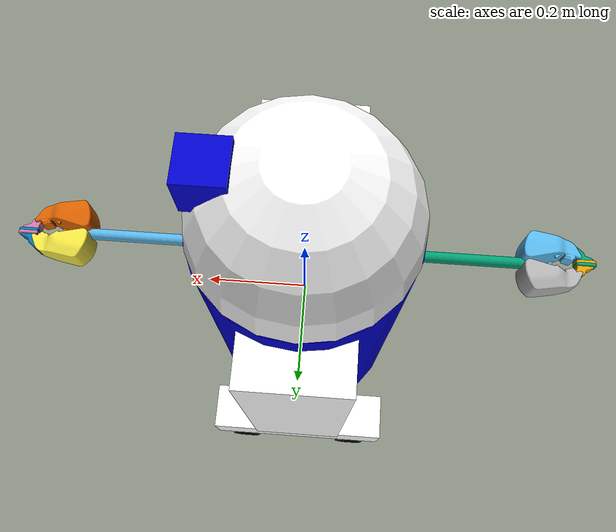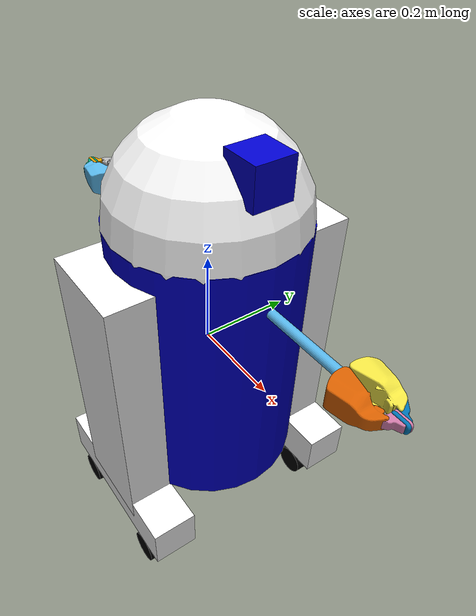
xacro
<?xml version="1.0"?>
<robot name="r2d2" xmlns:xacro="http://ros.org/wiki/xacro">

  <xacro:property name="width" value="0.2" />
  <xacro:property name="leglen" value="0.6" />
  <xacro:property name="polelen" value="0.2" />
  <xacro:property name="bodylen" value="0.6" />
  <xacro:property name="baselen" value="0.4" />
  <xacro:property name="wheeldiam" value="0.07" />
  <xacro:property name="pi" value="3.1415" />

  <material name="blue">
    <color rgba="0 0 0.8 1"/>
  </material>

  <material name="black">
    <color rgba="0 0 0 1"/>
  </material>

  <material name="white">
    <color rgba="1 1 1 1"/>
  </material>

  <xacro:macro name="default_inertial" params="mass">
    <inertial>
      <mass value="${mass}" />
      <inertia ixx="1.0" ixy="0.0" ixz="0.0" iyy="1.0" iyz="0.0" izz="1.0" />
    </inertial>
  </xacro:macro>

  <link name="base_link">
    <visual>
      <geometry>
        <cylinder radius="${width}" length="${bodylen}"/>
      </geometry>
      <material name="blue"/>
    </visual>
    <collision>
      <geometry>
        <cylinder radius="${width}" length="${bodylen}"/>
      </geometry>
    </collision>
    <xacro:default_inertial mass="10"/>
  </link>

  <xacro:macro name="wheel" params="prefix suffix reflect">

    <link name="${prefix}_${suffix}_wheel">
      <visual>
        <origin xyz="0 0 0" rpy="${pi/2} 0 0" />
        <geometry>
          <cylinder radius="${wheeldiam/2}" length="0.1"/>
        </geometry>
        <material name="black"/>
      </visual>
      <collision>
        <origin xyz="0 0 0" rpy="${pi/2} 0 0" />
        <geometry>
          <cylinder radius="${wheeldiam/2}" length="0.1"/>
        </geometry>
      </collision>
      <xacro:default_inertial mass="1"/>
    </link>
    <joint name="${prefix}_${suffix}_wheel_joint" type="continuous">
      <axis xyz="0 1 0" rpy="0 0 0" />
      <parent link="${prefix}_base"/>
      <child link="${prefix}_${suffix}_wheel"/>
      <origin xyz="${baselen*reflect/3} 0 -${wheeldiam/2+.05}" rpy="0 0 0"/>
    </joint>
    <!-- This block provides the simulator (Gazebo) with information on a few additional
    physical properties. See http://gazebosim.org/tutorials/?tut=ros_urdf for more-->
    <gazebo reference="${prefix}_${suffix}_wheel">
      <mu1 value="200.0"/>
      <mu2 value="100.0"/>
      <kp value="10000000.0" />
      <kd value="1.0" />
      <material>Gazebo/Grey</material>
    </gazebo>

    <!-- This block connects the wheel joint to an actuator (motor), which informs both
    simulation and visualization of the robot -->
    <transmission name="${prefix}_${suffix}_wheel_trans">
      <type>transmission_interface/SimpleTransmission</type>
      <actuator name="${prefix}_${suffix}_wheel_motor">
        <mechanicalReduction>1</mechanicalReduction>
      </actuator>
      <joint name="${prefix}_${suffix}_wheel_joint">
        <hardwareInterface>VelocityJointInterface</hardwareInterface>
      </joint>
    </transmission>
  </xacro:macro>

  <xacro:macro name="leg" params="prefix reflect">
    <link name="${prefix}_leg">
      <visual>
        <geometry>
          <box size="${leglen} 0.1 0.2"/>
        </geometry>
        <origin xyz="0 0 -${leglen/2}" rpy="0 ${pi/2} 0"/>
        <material name="white"/>
      </visual>
      <collision>
        <geometry>
          <box size="${leglen} 0.1 0.2"/>
        </geometry>
        <origin xyz="0 0 -${leglen/2}" rpy="0 ${pi/2} 0"/>
      </collision>
      <xacro:default_inertial mass="10"/>
    </link>

    <joint name="base_to_${prefix}_leg" type="fixed">
      <parent link="base_link"/>
      <child link="${prefix}_leg"/>
      <origin xyz="0 ${reflect*(width+.02)} 0.25" />
    </joint>

    <link name="${prefix}_base">
      <visual>
        <geometry>
          <box size="${baselen} 0.1 0.1"/>
        </geometry>
        <material name="white"/>
      </visual>
      <collision>
        <geometry>
          <box size="${baselen} 0.1 0.1"/>
        </geometry>
      </collision>
      <xacro:default_inertial mass="10"/>
    </link>

    <joint name="${prefix}_base_joint" type="fixed">
      <parent link="${prefix}_leg"/>
      <child link="${prefix}_base"/>
      <origin xyz="0 0 ${-leglen}" />
    </joint>
    <xacro:wheel prefix="${prefix}" suffix="front" reflect="1"/>
    <xacro:wheel prefix="${prefix}" suffix="back" reflect="-1"/>
  </xacro:macro>
  <xacro:leg prefix="right" reflect="-1" />
  <xacro:leg prefix="left" reflect="1" />

  <joint name="gripper_extension_front" type="prismatic">
    <parent link="base_link"/>
    <child link="gripper_pole_front"/>
    <limit effort="1000.0" lower="-${width*2-.02}" upper="0" velocity="0.5"/>
    <origin rpy="0 0 0" xyz="${width-.01} 0 0.2"/>
    <limit effort="30" velocity="0.2"/>
    <dynamics damping="0.0" friction="0.0"/>
  </joint>

  <link name="gripper_pole_front">
    <visual>
      <geometry>
        <cylinder length="${polelen}" radius="0.01"/>
      </geometry>
      <origin xyz="${polelen/2} 0 0" rpy="0 ${pi/2} 0 "/>
    </visual>
    <collision>
      <geometry>
        <cylinder length="${polelen}" radius="0.01"/>
      </geometry>
      <origin xyz="${polelen/2} 0 0" rpy="0 ${pi/2} 0 "/>
    </collision>
    <xacro:default_inertial mass="0.05"/>
  </link>

  <transmission name="gripper_extension_trans" type="SimpleTransmission">
    <type>transmission_interface/SimpleTransmission</type>
    <actuator name="gripper_extension_motor">
      <mechanicalReduction>1</mechanicalReduction>
    </actuator>
    <joint name="gripper_extension_front">
      <hardwareInterface>PositionJointInterface</hardwareInterface>
    </joint>
  </transmission>

  <link name="gripper_pole_back">
      <visual>
        <geometry>
          <cylinder length="${polelen}" radius="0.01"/>
        </geometry>
        <origin xyz="${-1*polelen/2} 0 0" rpy="0 ${pi/2} 0 "/>
      </visual>
      <collision>
        <geometry>
          <cylinder length="${polelen}" radius="0.01"/>
        </geometry>
        <origin xyz="${-1*polelen/2} 0 0" rpy="0 ${pi/2} 0 "/>
      </collision>
      <xacro:default_inertial mass="0.05"/>
  </link>
  <joint name="gripper_extension_back" type="prismatic">
    <parent link="base_link"/>
    <child link="gripper_pole_back"/>
    <limit effort="1000.0" upper="${width*2-.02}" lower="0" velocity="0.5"/>
    <origin rpy="0 0 0" xyz="${-1*width+.01} 0 0.2"/>
    <limit effort="30" velocity="0.2"/>
    <dynamics damping="0.0" friction="0.0"/>
  </joint>
  <transmission name="gripper_extension_trans_back" type="SimpleTransmission">
    <type>transmission_interface/SimpleTransmission</type>
    <actuator name="gripper_extension_motor_back">
      <mechanicalReduction>1</mechanicalReduction>
    </actuator>
    <joint name="gripper_extension_back">
      <hardwareInterface>PositionJointInterface</hardwareInterface>
    </joint>
  </transmission>

 <xacro:macro name="gripper" params="prefix suffix reflect reflectY">
    <joint name="${prefix}_gripper_joint_${suffix}" type="revolute">
      <axis xyz="0 0 ${reflect}"/>
      <limit effort="1000.0" lower="0.0" upper="${0.548*reflectY}" velocity="0.5"/>
      <origin rpy="0 0 0" xyz="${reflectY*polelen} ${reflect*0.01} 0"/>
      <parent link="gripper_pole_${suffix}"/>
      <child link="${prefix}_gripper_${suffix}"/>
      <limit effort="30" velocity="1.0"/>
      <dynamics damping="0.0" friction="0.0"/>
    </joint>
    <link name="${prefix}_gripper_${suffix}">
      <visual>
        <origin rpy="${(reflect-1)/2*pi} ${(reflectY-1)/2*pi} 0" xyz="0 0 0"/>
        <geometry>
          <mesh filename="package://urdf_tutorial/meshes/l_finger.dae"/>
        </geometry>
      </visual>
      <collision>
        <geometry>
          <mesh filename="package://urdf_tutorial/meshes/l_finger.dae"/>
        </geometry>
        <origin rpy="${(reflect-1)/2*pi} ${(reflectY-1)/2*pi} 0" xyz="0 0 0"/>
      </collision>
      <xacro:default_inertial mass="0.05"/>
    </link>
    <transmission name="${prefix}_gripper_trans_${suffix}" type="SimpleTransmission">
      <type>transmission_interface/SimpleTransmission</type>
      <actuator name="${prefix}_gripper_motor_${suffix}">
        <mechanicalReduction>1</mechanicalReduction>
      </actuator>
      <joint name="${prefix}_gripper_joint_${suffix}">
        <hardwareInterface>PositionJointInterface</hardwareInterface>
      </joint>
    </transmission>

    <joint name="${prefix}_tip_joint_${suffix}" type="fixed">
      <parent link="${prefix}_gripper_${suffix}"/>
      <child link="${prefix}_tip_${suffix}"/>
    </joint>
    <link name="${prefix}_tip_${suffix}">
      <visual>
        <origin rpy="${(reflect-1)/2*pi} ${(reflectY-1)/2*pi} 0" xyz="${0.09137*reflectY} ${0.00495*reflectY} 0"/>
        <geometry>
          <mesh filename="package://urdf_tutorial/meshes/l_finger_tip.dae"/>
        </geometry>
      </visual>
      <collision>
        <geometry>
          <mesh filename="package://urdf_tutorial/meshes/l_finger_tip.dae"/>
        </geometry>
        <origin rpy="${(reflect-1)/2*pi} ${(reflectY-1)/2*pi} 0" xyz="${0.09137*reflectY} ${0.00495*reflectY} 0"/>
      </collision>
      <xacro:default_inertial mass="0.05"/>
    </link>
  </xacro:macro>

  <xacro:gripper prefix="left" suffix="front" reflect="1" reflectY="1"/>
  <xacro:gripper prefix="right" suffix="front" reflect="-1" reflectY="1"/>
  <xacro:gripper prefix="left" suffix="back" reflect="1" reflectY="-1"/>
  <xacro:gripper prefix="right" suffix="back" reflect="-1"  reflectY="-1"/>

  <link name="head">
    <visual>
      <geometry>
        <sphere radius="${width}"/>
      </geometry>
      <material name="white"/>
    </visual>
    <collision>
      <geometry>
        <sphere radius="${width}"/>
      </geometry>
    </collision>
    <xacro:default_inertial mass="2"/>
  </link>

  <joint name="head_swivel" type="continuous">
    <parent link="base_link"/>
    <child link="head"/>
    <axis xyz="0 0 1"/>
    <origin xyz="0 0 ${bodylen/2}"/>
    <limit effort="30" velocity="1.0"/>
    <dynamics damping="0.0" friction="0.0"/>
  </joint>

  <!-- This block connects the head_swivel joint to an actuator (motor), which informs both
  simulation and visualization of the robot -->
  <transmission name="head_swivel_trans">
    <type>transmission_interface/SimpleTransmission</type>
    <actuator name="$head_swivel_motor">
      <mechanicalReduction>1</mechanicalReduction>
    </actuator>
    <joint name="head_swivel">
      <hardwareInterface>PositionJointInterface</hardwareInterface>
    </joint>
  </transmission>

  <link name="box">
    <visual>
      <geometry>
        <box size="0.08 0.08 0.08"/>
      </geometry>
      <material name="blue"/>
      <origin xyz="-0.04 0 0"/>
    </visual>
    <collision>
      <geometry>
        <box size="0.08 0.08 0.08"/>
      </geometry>
    </collision>
    <xacro:default_inertial mass="1"/>
  </link>

  <joint name="tobox" type="fixed">
    <parent link="head"/>
    <child link="box"/>
    <origin xyz="${.707*width+0.04} 0 ${.707*width}"/>
  </joint>

  <!-- Gazebo plugin for ROS Control -->
  <gazebo>
    <plugin name="gazebo_ros_control" filename="libgazebo_ros_control.so">
      <robotNamespace>/</robotNamespace>
    </plugin>
  </gazebo>

</robot>
